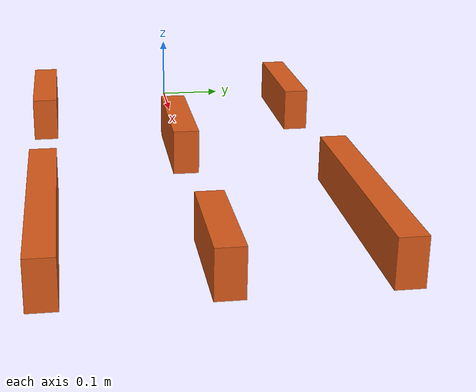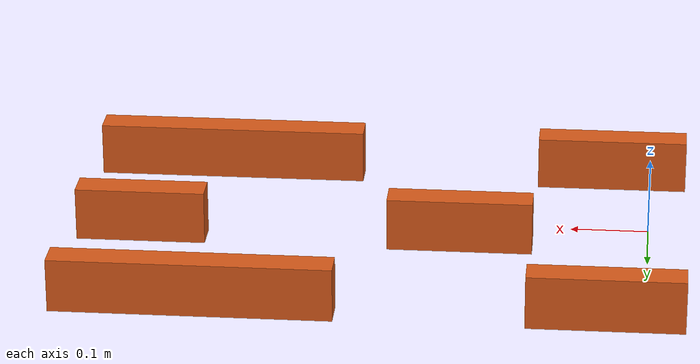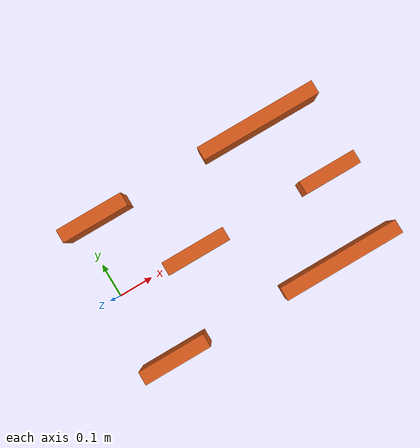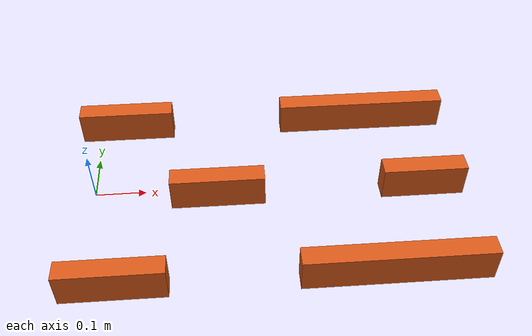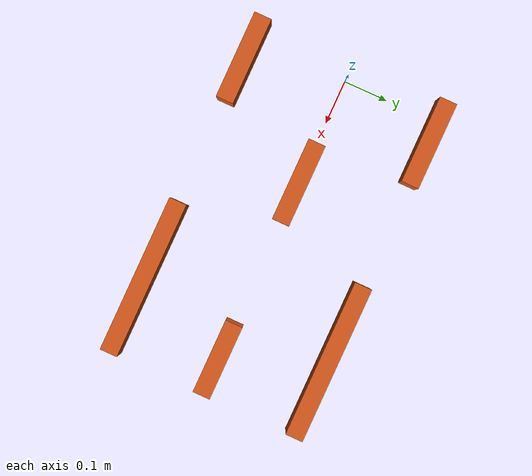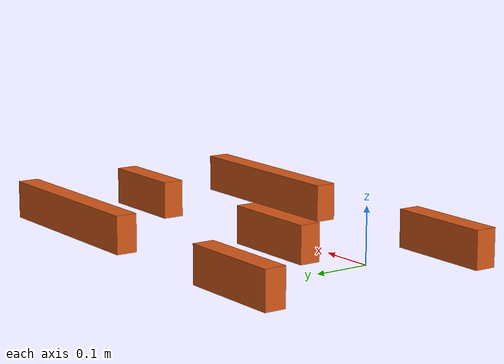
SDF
<?xml version="1.0"?>
<sdf version="1.7">
  <model name="scene_slalom">
    <static>true</static>
    <link name="fin_1_near"><pose>0.05 0.22 0.006 0 0 0</pose>
      <visual name="fin_1_near_v"><geometry><box><size>0.20 0.04 0.07</size></box></geometry>
        <material><diffuse>0.85 0.35 0.1 1.0</diffuse></material></visual>
      <collision name="fin_1_near_c"><geometry><box><size>0.20 0.04 0.07</size></box></geometry></collision>
    </link>
    <link name="fin_1_far"><pose>0.57 0.22 0.006 0 0 0</pose>
      <visual name="fin_1_far_v"><geometry><box><size>0.36 0.04 0.07</size></box></geometry>
        <material><diffuse>0.85 0.35 0.1 1.0</diffuse></material></visual>
      <collision name="fin_1_far_c"><geometry><box><size>0.36 0.04 0.07</size></box></geometry></collision>
    </link>
    <link name="fin_2_near"><pose>0.245 0.0 0.006 0 0 0</pose>
      <visual name="fin_2_near_v"><geometry><box><size>0.19 0.04 0.07</size></box></geometry>
        <material><diffuse>0.85 0.35 0.1 1.0</diffuse></material></visual>
      <collision name="fin_2_near_c"><geometry><box><size>0.19 0.04 0.07</size></box></geometry></collision>
    </link>
    <link name="fin_2_far"><pose>0.665 0.0 0.006 0 0 0</pose>
      <visual name="fin_2_far_v"><geometry><box><size>0.17 0.04 0.07</size></box></geometry>
        <material><diffuse>0.85 0.35 0.1 1.0</diffuse></material></visual>
      <collision name="fin_2_far_c"><geometry><box><size>0.17 0.04 0.07</size></box></geometry></collision>
    </link>
    <link name="fin_3_near"><pose>0.05 -0.22 0.006 0 0 0</pose>
      <visual name="fin_3_near_v"><geometry><box><size>0.20 0.04 0.07</size></box></geometry>
        <material><diffuse>0.85 0.35 0.1 1.0</diffuse></material></visual>
      <collision name="fin_3_near_c"><geometry><box><size>0.20 0.04 0.07</size></box></geometry></collision>
    </link>
    <link name="fin_3_far"><pose>0.57 -0.22 0.006 0 0 0</pose>
      <visual name="fin_3_far_v"><geometry><box><size>0.36 0.04 0.07</size></box></geometry>
        <material><diffuse>0.85 0.35 0.1 1.0</diffuse></material></visual>
      <collision name="fin_3_far_c"><geometry><box><size>0.36 0.04 0.07</size></box></geometry></collision>
    </link>
  </model>
</sdf>
